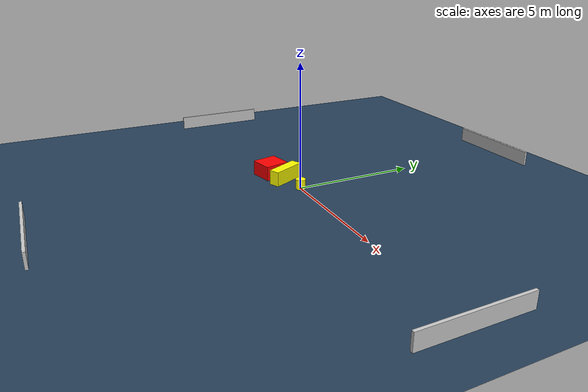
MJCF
<?xml version="1.0" ?>
<mujoco model="generated_environment">
  <option timestep="0.01" integrator="RK4" cone="elliptic"/>
  <default>
    <geom density="1"/>
  </default>
  <asset>
    <texture builtin="gradient" height="3072" name="skybox" rgb1="0.3 0.5 0.7" rgb2="0 0 0" type="skybox" width="512"/>
    <texture builtin="checker" height="300" name="groundplane" rgb1="0.2 0.3 0.4" rgb2="0.1 0.2 0.3" type="2d" width="300"/>
    <material name="groundplane" reflectance="0.2" texrepeat="5 5" texture="groundplane"/>
  </asset>
  <worldbody>
    <light dir="0 0 -1" directional="true" pos="0 0 1.5"/>
    <geom condim="3" friction="0.5 0.005 0.001" material="groundplane" name="floor" pos="0 0 0" size="0 0 0.05" type="plane"/>
    <body name="walls">
      <geom name="wall_1" condim="4" pos="-10.0 0.0 0.3" rgba="0.800000011920929 0.800000011920929 0.800000011920929 1.0" size="0.05 2.0 0.3" type="box"/>
      <geom name="wall_2" condim="4" pos="10.0 0.0 0.3" rgba="0.800000011920929 0.800000011920929 0.800000011920929 1.0" size="0.05 2.0 0.3" type="box"/>
      <geom name="wall_3" condim="4" pos="0.0 -10.0 0.3" rgba="0.800000011920929 0.800000011920929 0.800000011920929 1.0" size="2.0 0.05 0.3" type="box"/>
      <geom name="wall_4" condim="4" pos="0.0 10.0 0.3" rgba="0.800000011920929 0.800000011920929 0.800000011920929 1.0" size="2.0 0.05 0.3" type="box"/>
    </body>
    <body name="robot">
      <joint name="joint_x" type="slide" pos="0 0 0" axis="1 0 0"/>
      <joint name="joint_y" type="slide" pos="0 0 0" axis="0 1 0"/>
      <geom name="robot" type="cylinder" pos="0.0 0.0 0.2" size="0.2 0.2 0.0" mass="5.0" friction="1.0 0.005 0.0001" condim="4" rgba="1.0 1.0 0.0 1.0"/>
    </body>
    <body name="obstacle_1_movable">
      <geom name="obstacle_1_movable" condim="4" pos="-1.0421012468868511 -0.182550963732343 0.3" euler="0 0 116.12555457901476" friction="0.0 0.005 0.001" rgba="1.0 1.0 0.0 1.0" size="0.7183416749047169 0.2184507250473686 0.3" type="box" mass="0.1"/>
      <joint type="free"/>
    </body>
    <body name="obstacle_2_static">
      <geom name="obstacle_2_static" condim="4" pos="-1.8568218470557076 -0.4889214090998239 0.3" euler="0 0 102.08266856147547" friction="0.0 0.005 0.001" rgba="1.0 0.0 0.0 1.0" size="0.5087920345364021 0.4914311168323447 0.3" type="box"/>
    </body>
  </worldbody>
  <actuator>
    <motor name="actuator_x" joint="joint_x" gear="1" ctrlrange="-1 1"/>
    <motor name="actuator_y" joint="joint_y" gear="1" ctrlrange="-1 1"/>
  </actuator>
</mujoco>
